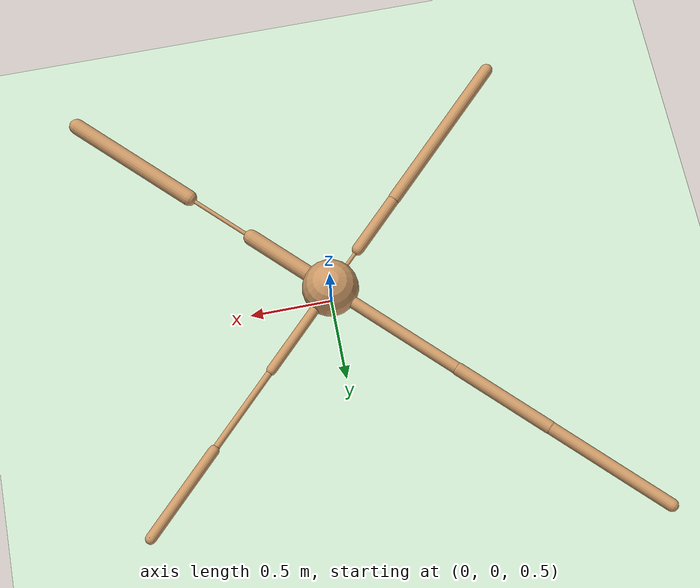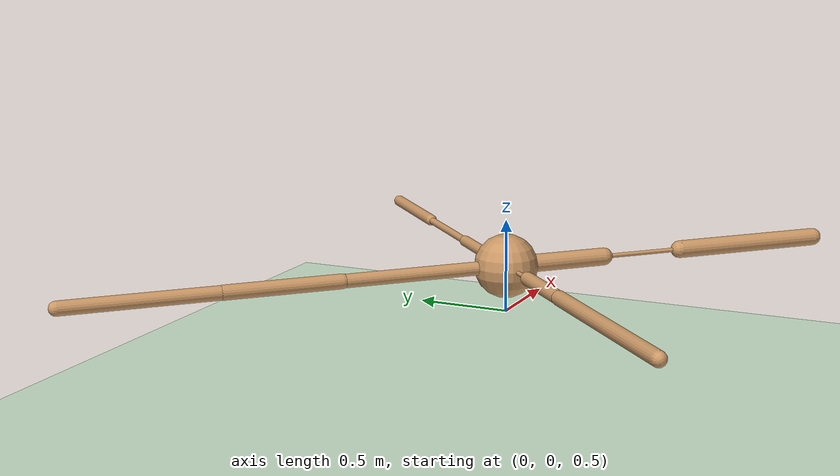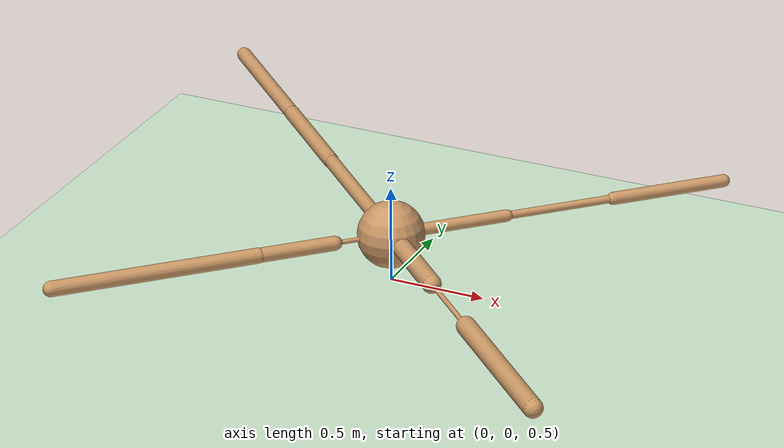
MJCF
<mujoco model="ant">
  <compiler angle="degree" coordinate="local" inertiafromgeom="true" />
  <option integrator="RK4" timestep="0.01" />
  <custom>
    <numeric data="0.0 0.0 0.55 1.0 0.0 0.0 0.0 0.0 1.0 0.0 -1.0 0.0 -1.0 0.0 1.0" name="init_qpos" />
  </custom>
  <default>
    <joint armature="1" damping="1" limited="true" />
    <geom conaffinity="0" condim="3" density="5.0" friction="1 0.5 0.5" margin="0.01" rgba="0.8 0.6 0.4 1" />
  </default>
  <asset>
    <texture builtin="gradient" height="100" rgb1="1 1 1" rgb2="0 0 0" type="skybox" width="100" />
    <texture builtin="flat" height="1278" mark="cross" markrgb="1 1 1" name="texgeom" random="0.01" rgb1="0.8 0.6 0.4" rgb2="0.8 0.6 0.4" type="cube" width="127" />
    <texture builtin="checker" height="100" name="texplane" rgb1="0 0 0" rgb2="0.8 0.8 0.8" type="2d" width="100" />
    <material name="MatPlane" reflectance="0.5" shininess="1" specular="1" texrepeat="60 60" texture="texplane" />
    <material name="geom" texture="texgeom" texuniform="true" />
  </asset>
  <worldbody>
    <light cutoff="100" diffuse="1 1 1" dir="-0 0 -1.3" directional="true" exponent="1" pos="0 0 1.3" specular=".1 .1 .1" />
    <geom conaffinity="1" condim="3" material="MatPlane" name="floor" pos="0 0 0" rgba="0.8 0.9 0.8 1" size="40 40 40" type="plane" />
    <body name="torso" pos="0 0 0.75">
      <camera name="track" mode="trackcom" pos="0 -11 5" xyaxes="1 0 0 0 0.5 1" />
      <geom name="torso_geom" pos="0 0 0" size="0.17106376588344574" type="sphere" />
      <joint armature="0" damping="0" limited="false" margin="0.01" name="root" pos="0 0 0" type="free" />
      <body name="front_left_leg" pos="0 0 0">
        <geom fromto="0 0 0 0.43451136350631714 0.43451136350631714 0" name="aux_1_geom" size="0.03072163835167885" type="capsule" />
        <body name="aux_1" pos="0.43451136350631714 0.43451136350631714 0">
          <joint axis="0 0 1" name="hip_1" pos="0.0 0.0 0.0" range="-30 30" type="hinge" />
          <geom fromto="0 0 0 0.4064016044139862 0.4064016044139862 0" name="left_leg_geom" size="0.020552419126033783" type="capsule" />
          <body name="left_leg_geom_aux" pos="0.4064016044139862 0.4064016044139862 0">
            <joint axis="-1 1 0" name="ankle_1" pos="0.0 0.0 0.0" range="30 70" type="hinge" />
            <geom fromto="0 0 0 0.4293268322944641 0.4293268322944641 0" name="left_ankle_geom" size="0.03278503566980362" type="capsule" />
          </body>
        </body>
      </body>
      <body name="front_right_leg" pos="0 0 0">
        <geom fromto="0 0 0 -0.6407893300056458 0.6407893300056458 0" name="aux_2_geom" size="0.03678981587290764" type="capsule" />
        <body name="aux_2" pos="-0.6407893300056458 0.6407893300056458 0">
          <joint axis="0 0 1" name="hip_2" pos="0.0 0.0 0.0" range="-30 30" type="hinge" />
          <geom fromto="0 0 0 -0.44032466411590576 0.44032466411590576 0" name="right_leg_geom" size="0.039966780692338943" type="capsule" />
          <body name="right_leg_geom_aux" pos="-0.44032466411590576 0.44032466411590576 0">
            <joint axis="1 1 0" name="ankle_2" pos="0.0 0.0 0.0" range="-70 -30" type="hinge" />
            <geom fromto="0 0 0 -0.5739483833312988 0.5739483833312988 0" name="right_ankle_geom" size="0.038405388593673706" type="capsule" />
          </body>
        </body>
      </body>
      <body name="back_leg" pos="0 0 0">
        <geom fromto="0 0 0 -0.2079140841960907 -0.2079140841960907 0" name="aux_3_geom" size="0.01181688904762268" type="capsule" />
        <body name="aux_3" pos="-0.2079140841960907 -0.2079140841960907 0">
          <joint axis="0 0 1" name="hip_3" pos="0.0 0.0 0.0" range="-30 30" type="hinge" />
          <geom fromto="0 0 0 -0.280835896730423 -0.280835896730423 0" name="back_leg_geom" size="0.03687683120369911" type="capsule" />
          <body name="back_leg_geom_aux" pos="-0.280835896730423 -0.280835896730423 0">
            <joint axis="-1 1 0" name="ankle_3" pos="0.0 0.0 0.0" range="-70 -30" type="hinge" />
            <geom fromto="0 0 0 -0.7456903457641602 -0.7456903457641602 0" name="third_ankle_geom" size="0.0393710732460022" type="capsule" />
          </body>
        </body>
      </body>
      <body name="right_back_leg" pos="0 0 0">
        <geom fromto="0 0 0 0.407640278339386 -0.407640278339386 0" name="aux_4_geom" size="0.048280224204063416" type="capsule" />
        <body name="aux_4" pos="0.407640278339386 -0.407640278339386 0">
          <joint axis="0 0 1" name="hip_4" pos="0.0 0.0 0.0" range="-30 30" type="hinge" />
          <geom fromto="0 0 0 0.32974767684936523 -0.32974767684936523 0" name="rightback_leg_geom" size="0.01220670621842146" type="capsule" />
          <body name="rightback_leg_geom_aux" pos="0.32974767684936523 -0.32974767684936523 0">
            <joint axis="1 1 0" name="ankle_4" pos="0.0 0.0 0.0" range="30 70" type="hinge" />
            <geom fromto="0 0 0 0.6075047254562378 -0.6075047254562378 0" name="fourth_ankle_geom" size="0.04865231364965439" type="capsule" />
          </body>
        </body>
      </body>
    </body>
  </worldbody>
  <actuator>
    <motor ctrllimited="true" ctrlrange="-1.0 1.0" joint="hip_4" gear="150" />
    <motor ctrllimited="true" ctrlrange="-1.0 1.0" joint="ankle_4" gear="150" />
    <motor ctrllimited="true" ctrlrange="-1.0 1.0" joint="hip_1" gear="150" />
    <motor ctrllimited="true" ctrlrange="-1.0 1.0" joint="ankle_1" gear="150" />
    <motor ctrllimited="true" ctrlrange="-1.0 1.0" joint="hip_2" gear="150" />
    <motor ctrllimited="true" ctrlrange="-1.0 1.0" joint="ankle_2" gear="150" />
    <motor ctrllimited="true" ctrlrange="-1.0 1.0" joint="hip_3" gear="150" />
    <motor ctrllimited="true" ctrlrange="-1.0 1.0" joint="ankle_3" gear="150" />
  </actuator>
</mujoco>
